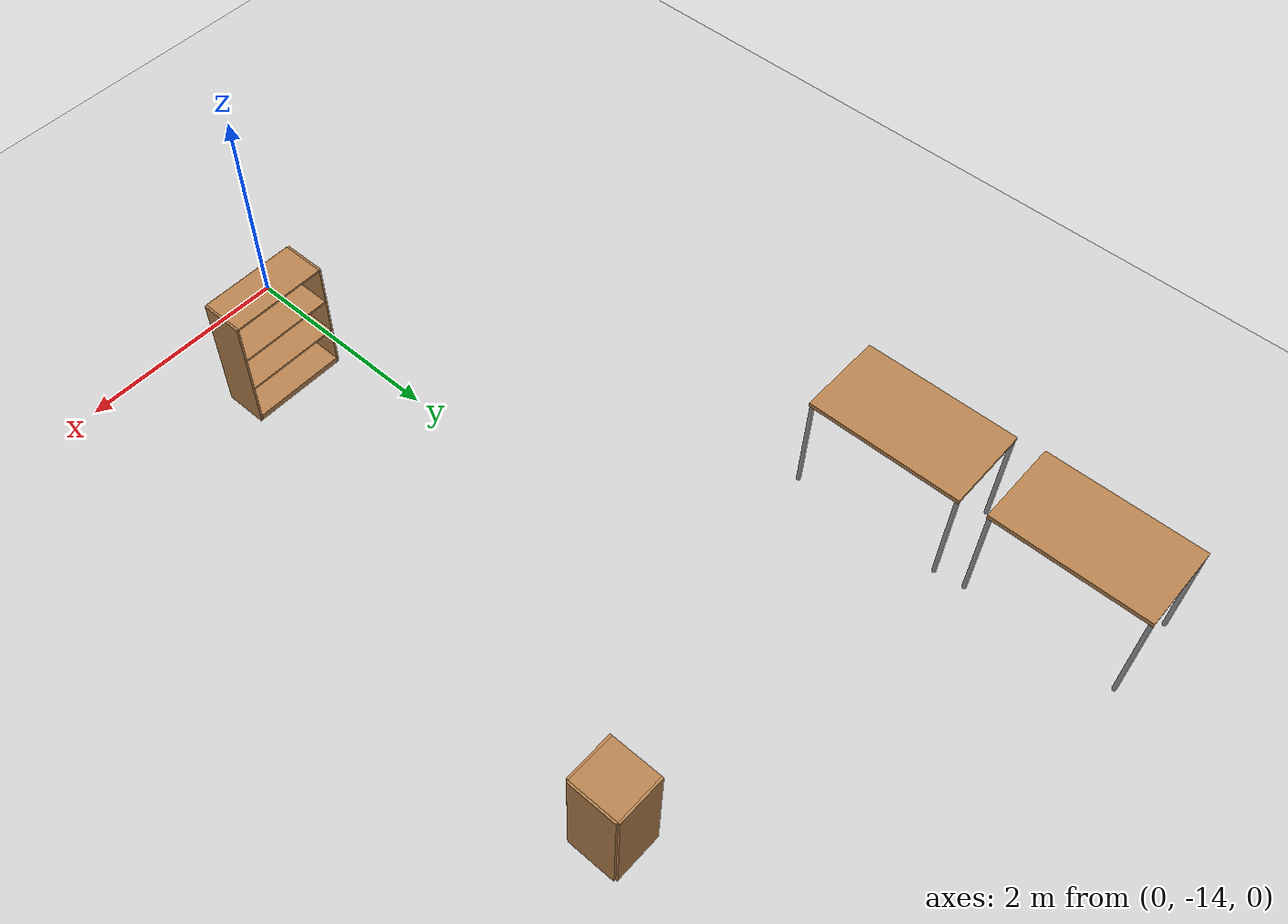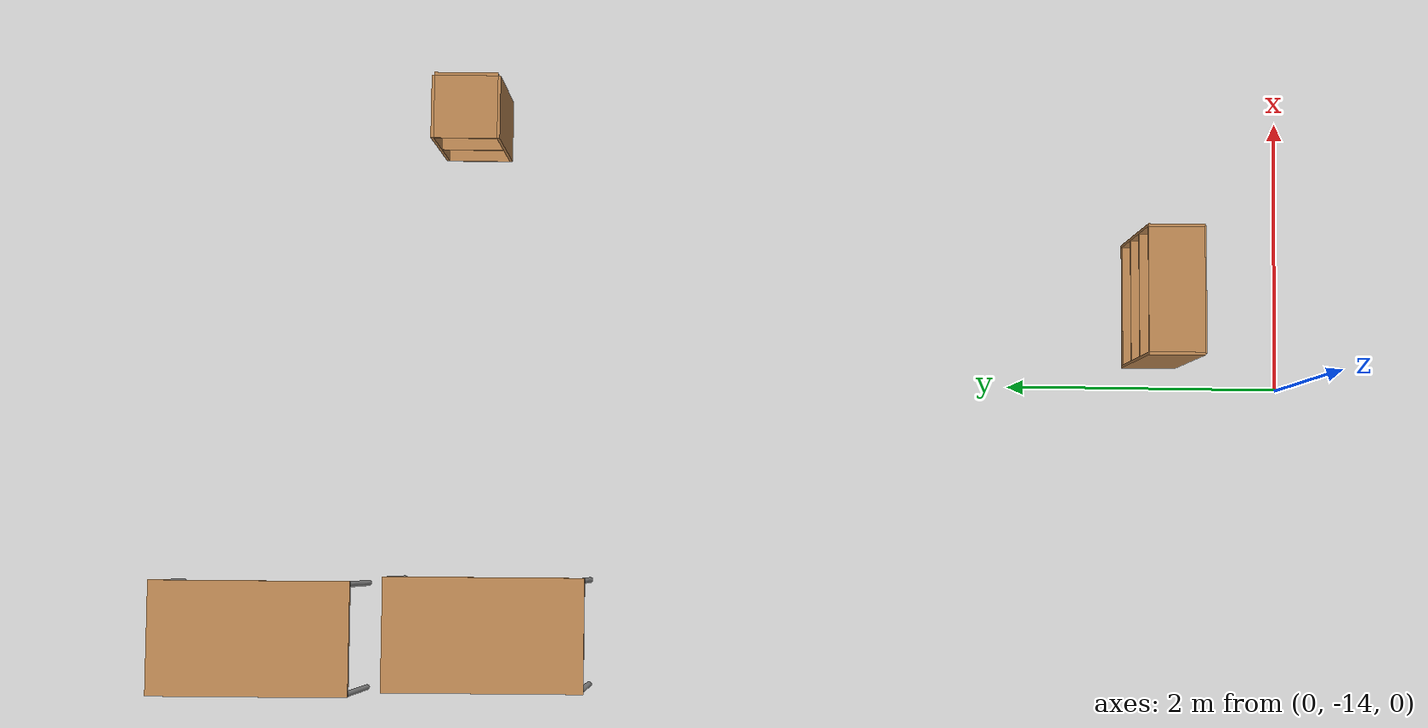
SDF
<sdf version="1.6">
 <world name="default">
  <light name="sun" type="directional">
   <pose>0 0 15 0 -0 0</pose>
   <diffuse>1 1 1 1</diffuse>
   <specular>0.1 0.1 0.1 1</specular>
   <attenuation>
    <range>1000</range>
    <constant>0.9</constant>
    <linear>0.01</linear>
    <quadratic>0.001</quadratic>
   </attenuation>
   <direction>-0.5 0.5 -1</direction>
  </light>
  <model name="ground_plane">
   <static>1</static>
   <link name="link">
    <collision name="collision">
     <geometry><plane><normal>0 0 1</normal><size>100 100</size></plane></geometry>
     <surface><friction><ode><mu>100</mu><mu2>50</mu2></ode></friction></surface>
    </collision>
    <visual name="visual">
     <transparency>1</transparency>
     <cast_shadows>0</cast_shadows>
     <geometry><plane><normal>0 0 1</normal><size>100 100</size></plane></geometry>
     <material>
      <script><uri>file://media/materials/scripts/gazebo.material</uri><name>Gazebo/Grey</name></script>
     </material>
    </visual>
   </link>
  </model>
  <gravity>0 0 -9.8</gravity>
  <magnetic_field>6e-06 2.3e-05 -4.2e-05</magnetic_field>
  <atmosphere type="adiabatic"/>
  <physics name="default_physics" default="0" type="ode">
   <max_step_size>0.001</max_step_size>
   <real_time_factor>1</real_time_factor>
   <real_time_update_rate>1000</real_time_update_rate>
  </physics>
  <scene><ambient>0.4 0.4 0.4 1</ambient><background>0.7 0.7 0.7 1</background><shadows>1</shadows></scene>
  <spherical_coordinates>
   <surface_model>EARTH_WGS84</surface_model>
   <latitude_deg>0</latitude_deg>
   <longitude_deg>0</longitude_deg>
   <elevation>0</elevation>
   <heading_deg>0</heading_deg>
  </spherical_coordinates>
  <model name="table_0_0_clone">
   <link name="link">
    <pose>0 0 0 0 -0 1.57493</pose>
    <inertial>
     <inertia><ixx>1</ixx><ixy>0</ixy><ixz>0</ixz><iyy>1</iyy><iyz>0</iyz><izz>1</izz></inertia>
     <mass>1</mass>
    </inertial>
    <visual name="visual1">
     <pose>0 0 1 0 -0 0</pose>
     <geometry><box><size>1.4 0.8 0.04</size></box></geometry>
     <material>
      <script><uri>file://media/materials/scripts/gazebo.material</uri><name>Gazebo/Wood</name></script>
      <ambient>1 1 1 1</ambient>
      <diffuse>1 1 1 1</diffuse>
      <specular>0.2 0.2 0.2 1</specular>
      <emissive>0 0 0 1</emissive>
     </material>
    </visual>
    <visual name="front_left_leg">
     <pose>0.68 0.38 0.5 0 -0 0</pose>
     <geometry><cylinder><radius>0.02</radius><length>1</length></cylinder></geometry>
     <material>
      <script><uri>file://media/materials/scripts/gazebo.material</uri><name>Gazebo/Grey</name></script>
      <ambient>0.3 0.3 0.3 1</ambient>
      <diffuse>0.7 0.7 0.7 1</diffuse>
      <specular>0.01 0.01 0.01 1</specular>
      <emissive>0 0 0 1</emissive>
     </material>
    </visual>
    <visual name="front_right_leg">
     <pose>0.68 -0.38 0.5 0 -0 0</pose>
     <geometry><cylinder><radius>0.02</radius><length>1</length></cylinder></geometry>
     <material>
      <script><uri>file://media/materials/scripts/gazebo.material</uri><name>Gazebo/Grey</name></script>
      <ambient>0.3 0.3 0.3 1</ambient>
      <diffuse>0.7 0.7 0.7 1</diffuse>
      <specular>0.01 0.01 0.01 1</specular>
      <emissive>0 0 0 1</emissive>
     </material>
    </visual>
    <visual name="back_right_leg">
     <pose>-0.68 -0.38 0.5 0 -0 0</pose>
     <geometry><cylinder><radius>0.02</radius><length>1</length></cylinder></geometry>
     <material>
      <script><uri>file://media/materials/scripts/gazebo.material</uri><name>Gazebo/Grey</name></script>
      <ambient>0.3 0.3 0.3 1</ambient>
      <diffuse>0.7 0.7 0.7 1</diffuse>
      <specular>0.01 0.01 0.01 1</specular>
      <emissive>0 0 0 1</emissive>
     </material>
    </visual>
    <visual name="back_left_leg">
     <pose>-0.68 0.38 0.5 0 -0 0</pose>
     <geometry><cylinder><radius>0.02</radius><length>1</length></cylinder></geometry>
     <material>
      <script><uri>file://media/materials/scripts/gazebo.material</uri><name>Gazebo/Grey</name></script>
      <ambient>0.3 0.3 0.3 1</ambient>
      <diffuse>0.7 0.7 0.7 1</diffuse>
      <specular>0.01 0.01 0.01 1</specular>
      <emissive>0 0 0 1</emissive>
     </material>
    </visual>
    <collision name="surface">
     <pose>0 0 1 0 -0 0</pose>
     <geometry><box><size>1.5 0.8 0.03</size></box></geometry>
     <surface>
      <friction>
       <ode><mu>0.6</mu><mu2>0.6</mu2><fdir1>0 0 0</fdir1><slip1>0</slip1><slip2>0</slip2></ode>
       <torsional>
        <coefficient>1</coefficient>
        <patch_radius>0</patch_radius>
        <surface_radius>0</surface_radius>
        <use_patch_radius>1</use_patch_radius>
        <ode><slip>0</slip></ode>
       </torsional>
      </friction>
      <bounce><restitution_coefficient>0</restitution_coefficient><threshold>1e+06</threshold></bounce>
      <contact>
       <collide_without_contact>0</collide_without_contact>
       <collide_without_contact_bitmask>1</collide_without_contact_bitmask>
       <collide_bitmask>1</collide_bitmask>
       <ode>
        <soft_cfm>0</soft_cfm>
        <soft_erp>0.2</soft_erp>
        <kp>1e+13</kp>
        <kd>1</kd>
        <max_vel>0.01</max_vel>
        <min_depth>0</min_depth>
       </ode>
       <bullet>
        <split_impulse>1</split_impulse>
        <split_impulse_penetration_threshold>-0.01</split_impulse_penetration_threshold>
        <soft_cfm>0</soft_cfm>
        <soft_erp>0.2</soft_erp>
        <kp>1e+13</kp>
        <kd>1</kd>
       </bullet>
      </contact>
     </surface>
    </collision>
    <collision name="front_left_leg">
     <pose>0.68 0.38 0.5 0 -0 0</pose>
     <geometry><cylinder><radius>0.02</radius><length>1</length></cylinder></geometry>
     <surface>
      <friction>
       <ode><mu>1</mu><mu2>1</mu2><fdir1>0 0 0</fdir1><slip1>0</slip1><slip2>0</slip2></ode>
       <torsional>
        <coefficient>1</coefficient>
        <patch_radius>0</patch_radius>
        <surface_radius>0</surface_radius>
        <use_patch_radius>1</use_patch_radius>
        <ode><slip>0</slip></ode>
       </torsional>
      </friction>
      <bounce><restitution_coefficient>0</restitution_coefficient><threshold>1e+06</threshold></bounce>
      <contact>
       <collide_without_contact>0</collide_without_contact>
       <collide_without_contact_bitmask>1</collide_without_contact_bitmask>
       <collide_bitmask>1</collide_bitmask>
       <ode>
        <soft_cfm>0</soft_cfm>
        <soft_erp>0.2</soft_erp>
        <kp>1e+13</kp>
        <kd>1</kd>
        <max_vel>0.01</max_vel>
        <min_depth>0</min_depth>
       </ode>
       <bullet>
        <split_impulse>1</split_impulse>
        <split_impulse_penetration_threshold>-0.01</split_impulse_penetration_threshold>
        <soft_cfm>0</soft_cfm>
        <soft_erp>0.2</soft_erp>
        <kp>1e+13</kp>
        <kd>1</kd>
       </bullet>
      </contact>
     </surface>
    </collision>
    <collision name="front_right_leg">
     <pose>0.68 -0.38 0.5 0 -0 0</pose>
     <geometry><cylinder><radius>0.02</radius><length>1</length></cylinder></geometry>
     <surface>
      <friction>
       <ode><mu>1</mu><mu2>1</mu2><fdir1>0 0 0</fdir1><slip1>0</slip1><slip2>0</slip2></ode>
       <torsional>
        <coefficient>1</coefficient>
        <patch_radius>0</patch_radius>
        <surface_radius>0</surface_radius>
        <use_patch_radius>1</use_patch_radius>
        <ode><slip>0</slip></ode>
       </torsional>
      </friction>
      <bounce><restitution_coefficient>0</restitution_coefficient><threshold>1e+06</threshold></bounce>
      <contact>
       <collide_without_contact>0</collide_without_contact>
       <collide_without_contact_bitmask>1</collide_without_contact_bitmask>
       <collide_bitmask>1</collide_bitmask>
       <ode>
        <soft_cfm>0</soft_cfm>
        <soft_erp>0.2</soft_erp>
        <kp>1e+13</kp>
        <kd>1</kd>
        <max_vel>0.01</max_vel>
        <min_depth>0</min_depth>
       </ode>
       <bullet>
        <split_impulse>1</split_impulse>
        <split_impulse_penetration_threshold>-0.01</split_impulse_penetration_threshold>
        <soft_cfm>0</soft_cfm>
        <soft_erp>0.2</soft_erp>
        <kp>1e+13</kp>
        <kd>1</kd>
       </bullet>
      </contact>
     </surface>
    </collision>
    <collision name="back_right_leg">
     <pose>-0.68 -0.38 0.5 0 -0 0</pose>
     <geometry><cylinder><radius>0.02</radius><length>1</length></cylinder></geometry>
     <surface>
      <friction>
       <ode><mu>1</mu><mu2>1</mu2><fdir1>0 0 0</fdir1><slip1>0</slip1><slip2>0</slip2></ode>
       <torsional>
        <coefficient>1</coefficient>
        <patch_radius>0</patch_radius>
        <surface_radius>0</surface_radius>
        <use_patch_radius>1</use_patch_radius>
        <ode><slip>0</slip></ode>
       </torsional>
      </friction>
      <bounce><restitution_coefficient>0</restitution_coefficient><threshold>1e+06</threshold></bounce>
      <contact>
       <collide_without_contact>0</collide_without_contact>
       <collide_without_contact_bitmask>1</collide_without_contact_bitmask>
       <collide_bitmask>1</collide_bitmask>
       <ode>
        <soft_cfm>0</soft_cfm>
        <soft_erp>0.2</soft_erp>
        <kp>1e+13</kp>
        <kd>1</kd>
        <max_vel>0.01</max_vel>
        <min_depth>0</min_depth>
       </ode>
       <bullet>
        <split_impulse>1</split_impulse>
        <split_impulse_penetration_threshold>-0.01</split_impulse_penetration_threshold>
        <soft_cfm>0</soft_cfm>
        <soft_erp>0.2</soft_erp>
        <kp>1e+13</kp>
        <kd>1</kd>
       </bullet>
      </contact>
     </surface>
    </collision>
    <collision name="back_left_leg">
     <pose>-0.68 0.38 0.5 0 -0 0</pose>
     <geometry><cylinder><radius>0.02</radius><length>1</length></cylinder></geometry>
     <surface>
      <friction>
       <ode><mu>1</mu><mu2>1</mu2><fdir1>0 0 0</fdir1><slip1>0</slip1><slip2>0</slip2></ode>
       <torsional>
        <coefficient>1</coefficient>
        <patch_radius>0</patch_radius>
        <surface_radius>0</surface_radius>
        <use_patch_radius>1</use_patch_radius>
        <ode><slip>0</slip></ode>
       </torsional>
      </friction>
      <bounce><restitution_coefficient>0</restitution_coefficient><threshold>1e+06</threshold></bounce>
      <contact>
       <collide_without_contact>0</collide_without_contact>
       <collide_without_contact_bitmask>1</collide_without_contact_bitmask>
       <collide_bitmask>1</collide_bitmask>
       <ode>
        <soft_cfm>0</soft_cfm>
        <soft_erp>0.2</soft_erp>
        <kp>1e+13</kp>
        <kd>1</kd>
        <max_vel>0.01</max_vel>
        <min_depth>0</min_depth>
       </ode>
       <bullet>
        <split_impulse>1</split_impulse>
        <split_impulse_penetration_threshold>-0.01</split_impulse_penetration_threshold>
        <soft_cfm>0</soft_cfm>
        <soft_erp>0.2</soft_erp>
        <kp>1e+13</kp>
        <kd>1</kd>
       </bullet>
      </contact>
     </surface>
    </collision>
   </link>
   <static>0</static>
   <pose>-1.85355 -8.24768 0.189795 -5e-06 -2e-06 0</pose>
  </model>
  <model name="table_0_0_clone_0">
   <link name="link">
    <pose>0 0 0 0 -0 1.57493</pose>
    <inertial>
     <inertia><ixx>1</ixx><ixy>0</ixy><ixz>0</ixz><iyy>1</iyy><iyz>0</iyz><izz>1</izz></inertia>
     <mass>1</mass>
    </inertial>
    <visual name="visual1">
     <pose>0 0 1 0 -0 0</pose>
     <geometry><box><size>1.4 0.8 0.04</size></box></geometry>
     <material>
      <script><uri>file://media/materials/scripts/gazebo.material</uri><name>Gazebo/Wood</name></script>
      <ambient>1 1 1 1</ambient>
      <diffuse>1 1 1 1</diffuse>
      <specular>0.2 0.2 0.2 1</specular>
      <emissive>0 0 0 1</emissive>
     </material>
    </visual>
    <visual name="front_left_leg">
     <pose>0.68 0.38 0.5 0 -0 0</pose>
     <geometry><cylinder><radius>0.02</radius><length>1</length></cylinder></geometry>
     <material>
      <script><uri>file://media/materials/scripts/gazebo.material</uri><name>Gazebo/Grey</name></script>
      <ambient>0.3 0.3 0.3 1</ambient>
      <diffuse>0.7 0.7 0.7 1</diffuse>
      <specular>0.01 0.01 0.01 1</specular>
      <emissive>0 0 0 1</emissive>
     </material>
    </visual>
    <visual name="front_right_leg">
     <pose>0.68 -0.38 0.5 0 -0 0</pose>
     <geometry><cylinder><radius>0.02</radius><length>1</length></cylinder></geometry>
     <material>
      <script><uri>file://media/materials/scripts/gazebo.material</uri><name>Gazebo/Grey</name></script>
      <ambient>0.3 0.3 0.3 1</ambient>
      <diffuse>0.7 0.7 0.7 1</diffuse>
      <specular>0.01 0.01 0.01 1</specular>
      <emissive>0 0 0 1</emissive>
     </material>
    </visual>
    <visual name="back_right_leg">
     <pose>-0.68 -0.38 0.5 0 -0 0</pose>
     <geometry><cylinder><radius>0.02</radius><length>1</length></cylinder></geometry>
     <material>
      <script><uri>file://media/materials/scripts/gazebo.material</uri><name>Gazebo/Grey</name></script>
      <ambient>0.3 0.3 0.3 1</ambient>
      <diffuse>0.7 0.7 0.7 1</diffuse>
      <specular>0.01 0.01 0.01 1</specular>
      <emissive>0 0 0 1</emissive>
     </material>
    </visual>
    <visual name="back_left_leg">
     <pose>-0.68 0.38 0.5 0 -0 0</pose>
     <geometry><cylinder><radius>0.02</radius><length>1</length></cylinder></geometry>
     <material>
      <script><uri>file://media/materials/scripts/gazebo.material</uri><name>Gazebo/Grey</name></script>
      <ambient>0.3 0.3 0.3 1</ambient>
      <diffuse>0.7 0.7 0.7 1</diffuse>
      <specular>0.01 0.01 0.01 1</specular>
      <emissive>0 0 0 1</emissive>
     </material>
    </visual>
    <collision name="surface">
     <pose>0 0 1 0 -0 0</pose>
     <geometry><box><size>1.5 0.8 0.03</size></box></geometry>
     <surface>
      <friction>
       <ode><mu>0.6</mu><mu2>0.6</mu2><fdir1>0 0 0</fdir1><slip1>0</slip1><slip2>0</slip2></ode>
       <torsional>
        <coefficient>1</coefficient>
        <patch_radius>0</patch_radius>
        <surface_radius>0</surface_radius>
        <use_patch_radius>1</use_patch_radius>
        <ode><slip>0</slip></ode>
       </torsional>
      </friction>
      <bounce><restitution_coefficient>0</restitution_coefficient><threshold>1e+06</threshold></bounce>
      <contact>
       <collide_without_contact>0</collide_without_contact>
       <collide_without_contact_bitmask>1</collide_without_contact_bitmask>
       <collide_bitmask>1</collide_bitmask>
       <ode>
        <soft_cfm>0</soft_cfm>
        <soft_erp>0.2</soft_erp>
        <kp>1e+13</kp>
        <kd>1</kd>
        <max_vel>0.01</max_vel>
        <min_depth>0</min_depth>
       </ode>
       <bullet>
        <split_impulse>1</split_impulse>
        <split_impulse_penetration_threshold>-0.01</split_impulse_penetration_threshold>
        <soft_cfm>0</soft_cfm>
        <soft_erp>0.2</soft_erp>
        <kp>1e+13</kp>
        <kd>1</kd>
       </bullet>
      </contact>
     </surface>
    </collision>
    <collision name="front_left_leg">
     <pose>0.68 0.38 0.5 0 -0 0</pose>
     <geometry><cylinder><radius>0.02</radius><length>1</length></cylinder></geometry>
     <surface>
      <friction>
       <ode><mu>1</mu><mu2>1</mu2><fdir1>0 0 0</fdir1><slip1>0</slip1><slip2>0</slip2></ode>
       <torsional>
        <coefficient>1</coefficient>
        <patch_radius>0</patch_radius>
        <surface_radius>0</surface_radius>
        <use_patch_radius>1</use_patch_radius>
        <ode><slip>0</slip></ode>
       </torsional>
      </friction>
      <bounce><restitution_coefficient>0</restitution_coefficient><threshold>1e+06</threshold></bounce>
      <contact>
       <collide_without_contact>0</collide_without_contact>
       <collide_without_contact_bitmask>1</collide_without_contact_bitmask>
       <collide_bitmask>1</collide_bitmask>
       <ode>
        <soft_cfm>0</soft_cfm>
        <soft_erp>0.2</soft_erp>
        <kp>1e+13</kp>
        <kd>1</kd>
        <max_vel>0.01</max_vel>
        <min_depth>0</min_depth>
       </ode>
       <bullet>
        <split_impulse>1</split_impulse>
        <split_impulse_penetration_threshold>-0.01</split_impulse_penetration_threshold>
        <soft_cfm>0</soft_cfm>
        <soft_erp>0.2</soft_erp>
        <kp>1e+13</kp>
        <kd>1</kd>
       </bullet>
      </contact>
     </surface>
    </collision>
    <collision name="front_right_leg">
     <pose>0.68 -0.38 0.5 0 -0 0</pose>
     <geometry><cylinder><radius>0.02</radius><length>1</length></cylinder></geometry>
     <surface>
      <friction>
       <ode><mu>1</mu><mu2>1</mu2><fdir1>0 0 0</fdir1><slip1>0</slip1><slip2>0</slip2></ode>
       <torsional>
        <coefficient>1</coefficient>
        <patch_radius>0</patch_radius>
        <surface_radius>0</surface_radius>
        <use_patch_radius>1</use_patch_radius>
        <ode><slip>0</slip></ode>
       </torsional>
      </friction>
      <bounce><restitution_coefficient>0</restitution_coefficient><threshold>1e+06</threshold></bounce>
      <contact>
       <collide_without_contact>0</collide_without_contact>
       <collide_without_contact_bitmask>1</collide_without_contact_bitmask>
       <collide_bitmask>1</collide_bitmask>
       <ode>
        <soft_cfm>0</soft_cfm>
        <soft_erp>0.2</soft_erp>
        <kp>1e+13</kp>
        <kd>1</kd>
        <max_vel>0.01</max_vel>
        <min_depth>0</min_depth>
       </ode>
       <bullet>
        <split_impulse>1</split_impulse>
        <split_impulse_penetration_threshold>-0.01</split_impulse_penetration_threshold>
        <soft_cfm>0</soft_cfm>
        <soft_erp>0.2</soft_erp>
        <kp>1e+13</kp>
        <kd>1</kd>
       </bullet>
      </contact>
     </surface>
    </collision>
    <collision name="back_right_leg">
     <pose>-0.68 -0.38 0.5 0 -0 0</pose>
     <geometry><cylinder><radius>0.02</radius><length>1</length></cylinder></geometry>
     <surface>
      <friction>
       <ode><mu>1</mu><mu2>1</mu2><fdir1>0 0 0</fdir1><slip1>0</slip1><slip2>0</slip2></ode>
       <torsional>
        <coefficient>1</coefficient>
        <patch_radius>0</patch_radius>
        <surface_radius>0</surface_radius>
        <use_patch_radius>1</use_patch_radius>
        <ode><slip>0</slip></ode>
       </torsional>
      </friction>
      <bounce><restitution_coefficient>0</restitution_coefficient><threshold>1e+06</threshold></bounce>
      <contact>
       <collide_without_contact>0</collide_without_contact>
       <collide_without_contact_bitmask>1</collide_without_contact_bitmask>
       <collide_bitmask>1</collide_bitmask>
       <ode>
        <soft_cfm>0</soft_cfm>
        <soft_erp>0.2</soft_erp>
        <kp>1e+13</kp>
        <kd>1</kd>
        <max_vel>0.01</max_vel>
        <min_depth>0</min_depth>
       </ode>
       <bullet>
        <split_impulse>1</split_impulse>
        <split_impulse_penetration_threshold>-0.01</split_impulse_penetration_threshold>
        <soft_cfm>0</soft_cfm>
        <soft_erp>0.2</soft_erp>
        <kp>1e+13</kp>
        <kd>1</kd>
       </bullet>
      </contact>
     </surface>
    </collision>
    <collision name="back_left_leg">
     <pose>-0.68 0.38 0.5 0 -0 0</pose>
     <geometry><cylinder><radius>0.02</radius><length>1</length></cylinder></geometry>
     <surface>
      <friction>
       <ode><mu>1</mu><mu2>1</mu2><fdir1>0 0 0</fdir1><slip1>0</slip1><slip2>0</slip2></ode>
       <torsional>
        <coefficient>1</coefficient>
        <patch_radius>0</patch_radius>
        <surface_radius>0</surface_radius>
        <use_patch_radius>1</use_patch_radius>
        <ode><slip>0</slip></ode>
       </torsional>
      </friction>
      <bounce><restitution_coefficient>0</restitution_coefficient><threshold>1e+06</threshold></bounce>
      <contact>
       <collide_without_contact>0</collide_without_contact>
       <collide_without_contact_bitmask>1</collide_without_contact_bitmask>
       <collide_bitmask>1</collide_bitmask>
       <ode>
        <soft_cfm>0</soft_cfm>
        <soft_erp>0.2</soft_erp>
        <kp>1e+13</kp>
        <kd>1</kd>
        <max_vel>0.01</max_vel>
        <min_depth>0</min_depth>
       </ode>
       <bullet>
        <split_impulse>1</split_impulse>
        <split_impulse_penetration_threshold>-0.01</split_impulse_penetration_threshold>
        <soft_cfm>0</soft_cfm>
        <soft_erp>0.2</soft_erp>
        <kp>1e+13</kp>
        <kd>1</kd>
       </bullet>
      </contact>
     </surface>
    </collision>
   </link>
   <static>0</static>
   <pose>-1.89653 -6.62262 0.189795 -5e-06 -2e-06 0</pose>
  </model>
  <model name="cabinet_0">
   <static>1</static>
   <link name="cabinet_bottom_plate">
    <inertial>
     <pose>0 0 -1 0 -0 0</pose>
     <inertia><ixx>2.05</ixx><ixy>0</ixy><ixz>0</ixz><iyy>2.05</iyy><iyz>0</iyz><izz>2.05</izz></inertia>
     <mass>25</mass>
    </inertial>
    <collision name="cabinet_bottom_plate_geom">
     <pose>0 0 0.01 0 -0 0</pose>
     <geometry><box><size>0.45 0.45 0.02</size></box></geometry>
    </collision>
    <visual name="cabinet_bottom_plate_geom_visual">
     <pose>0 0 0.01 0 -0 0</pose>
     <geometry><box><size>0.45 0.45 0.02</size></box></geometry>
     <material>
      <script><uri>file://media/materials/scripts/gazebo.material</uri><name>Gazebo/Wood</name></script>
     </material>
    </visual>
    <collision name="cabinet_bottom_plate_geom_cabinet_back_plate">
     <pose>0.235 0 0.51 0 -0 0</pose>
     <geometry><box><size>0.02 0.45 1.02</size></box></geometry>
    </collision>
    <visual name="cabinet_bottom_plate_geom_cabinet_back_plate_visual">
     <pose>0.235 0 0.51 0 -0 0</pose>
     <geometry><box><size>0.02 0.45 1.02</size></box></geometry>
     <material>
      <script><uri>file://media/materials/scripts/gazebo.material</uri><name>Gazebo/Wood</name></script>
     </material>
    </visual>
    <collision name="cabinet_bottom_plate_geom_cabinet_left_plate">
     <pose>0 0.235 0.51 0 -0 0</pose>
     <geometry><box><size>0.45 0.02 1.02</size></box></geometry>
    </collision>
    <visual name="cabinet_bottom_plate_geom_cabinet_left_plate_visual">
     <pose>0 0.235 0.51 0 -0 0</pose>
     <geometry><box><size>0.45 0.02 1.02</size></box></geometry>
     <material>
      <script><uri>file://media/materials/scripts/gazebo.material</uri><name>Gazebo/Wood</name></script>
     </material>
    </visual>
    <collision name="cabinet_bottom_plate_geom_cabinet_middle_plate">
     <pose>0 0 0.51 0 -0 0</pose>
     <geometry><box><size>0.45 0.45 0.02</size></box></geometry>
    </collision>
    <visual name="cabinet_bottom_plate_geom_cabinet_middle_plate_visual">
     <pose>0 0 0.51 0 -0 0</pose>
     <geometry><box><size>0.45 0.45 0.02</size></box></geometry>
     <material>
      <script><uri>file://media/materials/scripts/gazebo.material</uri><name>Gazebo/Wood</name></script>
     </material>
    </visual>
    <collision name="cabinet_bottom_plate_geom_cabinet_right_plate">
     <pose>0 -0.235 0.51 0 -0 0</pose>
     <geometry><box><size>0.45 0.02 1.02</size></box></geometry>
    </collision>
    <visual name="cabinet_bottom_plate_geom_cabinet_right_plate_visual">
     <pose>0 -0.235 0.51 0 -0 0</pose>
     <geometry><box><size>0.45 0.02 1.02</size></box></geometry>
     <material>
      <script><uri>file://media/materials/scripts/gazebo.material</uri><name>Gazebo/Wood</name></script>
     </material>
    </visual>
    <collision name="cabinet_bottom_plate_geom_cabinet_top_plate">
     <pose>0 0 1.01 0 -0 0</pose>
     <geometry><box><size>0.45 0.45 0.02</size></box></geometry>
    </collision>
    <visual name="cabinet_bottom_plate_geom_cabinet_top_plate_visual">
     <pose>0 0 1.01 0 -0 0</pose>
     <geometry><box><size>0.45 0.45 0.02</size></box></geometry>
     <material>
      <script><uri>file://media/materials/scripts/gazebo.material</uri><name>Gazebo/Wood</name></script>
     </material>
    </visual>
   </link>
   <pose>1.87435 -8.03122 0 0 -0 0</pose>
  </model>
  <model name="bookshelf">
   <static>1</static>
   <link name="link">
    <inertial><mass>1</mass></inertial>
    <collision name="back">
     <pose>0 0.005 0.6 0 -0 0</pose>
     <geometry><box><size>0.9 0.01 1.2</size></box></geometry>
    </collision>
    <visual name="visual1">
     <pose>0 0.005 0.6 0 -0 0</pose>
     <geometry><box><size>0.9 0.01 1.2</size></box></geometry>
     <material>
      <script><uri>file://media/materials/scripts/gazebo.material</uri><name>Gazebo/Wood</name></script>
     </material>
    </visual>
    <collision name="left_side">
     <pose>0.45 -0.195 0.6 0 -0 0</pose>
     <geometry><box><size>0.02 0.4 1.2</size></box></geometry>
    </collision>
    <visual name="visual2">
     <pose>0.45 -0.195 0.6 0 -0 0</pose>
     <geometry><box><size>0.02 0.4 1.2</size></box></geometry>
     <material>
      <script><uri>file://media/materials/scripts/gazebo.material</uri><name>Gazebo/Wood</name></script>
     </material>
    </visual>
    <collision name="right_side">
     <pose>-0.45 -0.195 0.6 0 -0 0</pose>
     <geometry><box><size>0.02 0.4 1.2</size></box></geometry>
    </collision>
    <visual name="visual3">
     <pose>-0.45 -0.195 0.6 0 -0 0</pose>
     <geometry><box><size>0.02 0.4 1.2</size></box></geometry>
     <material>
      <script><uri>file://media/materials/scripts/gazebo.material</uri><name>Gazebo/Wood</name></script>
     </material>
    </visual>
    <collision name="bottom">
     <pose>0 -0.195 0.03 0 -0 0</pose>
     <geometry><box><size>0.88 0.4 0.06</size></box></geometry>
    </collision>
    <visual name="visual4">
     <pose>0 -0.195 0.03 0 -0 0</pose>
     <geometry><box><size>0.88 0.4 0.06</size></box></geometry>
     <material>
      <script><uri>file://media/materials/scripts/gazebo.material</uri><name>Gazebo/Wood</name></script>
     </material>
    </visual>
    <collision name="top">
     <pose>0 -0.195 1.19 0 -0 0</pose>
     <geometry><box><size>0.88 0.4 0.02</size></box></geometry>
    </collision>
    <visual name="visual5">
     <pose>0 -0.195 1.19 0 -0 0</pose>
     <geometry><box><size>0.88 0.4 0.02</size></box></geometry>
     <material>
      <script><uri>file://media/materials/scripts/gazebo.material</uri><name>Gazebo/Wood</name></script>
     </material>
    </visual>
    <collision name="low_shelf">
     <pose>0 -0.195 0.43 0 -0 0</pose>
     <geometry><box><size>0.88 0.4 0.02</size></box></geometry>
    </collision>
    <visual name="visual6">
     <pose>0 -0.195 0.43 0 -0 0</pose>
     <geometry><box><size>0.88 0.4 0.02</size></box></geometry>
     <material>
      <script><uri>file://media/materials/scripts/gazebo.material</uri><name>Gazebo/Wood</name></script>
     </material>
    </visual>
    <collision name="high_shelf">
     <pose>0 -0.195 0.8 0 -0 0</pose>
     <geometry><box><size>0.88 0.4 0.02</size></box></geometry>
    </collision>
    <visual name="visual7">
     <pose>0 -0.195 0.8 0 -0 0</pose>
     <geometry><box><size>0.88 0.4 0.02</size></box></geometry>
     <material>
      <script><uri>file://media/materials/scripts/gazebo.material</uri><name>Gazebo/Wood</name></script>
     </material>
    </visual>
   </link>
   <pose>0.617489 -13.2479 0 0 0 -3.13527</pose>
  </model>
 </world>
</sdf>
